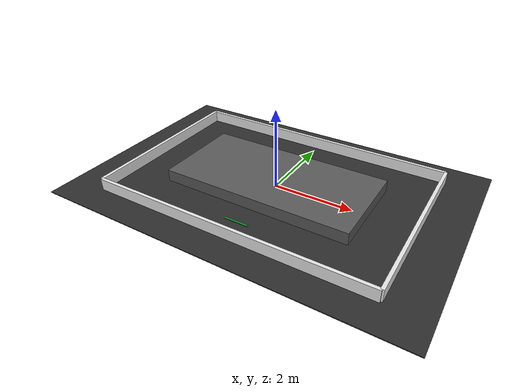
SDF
<?xml version="1.0" ?>
<sdf version="1.9">
  <world name="osracer_rect_track_nomodel">
    <plugin filename="gz-sim-physics-system" name="gz::sim::systems::Physics"/>
    <plugin filename="gz-sim-user-commands-system" name="gz::sim::systems::UserCommands"/>
    <plugin filename="gz-sim-scene-broadcaster-system" name="gz::sim::systems::SceneBroadcaster"/>
    <plugin filename="gz-sim-sensors-system" name="gz::sim::systems::Sensors">
      <render_engine>ogre2</render_engine>
    </plugin>
    <plugin filename="gz-sim-imu-system" name="gz::sim::systems::Imu"/>

    <gravity>0 0 -9.8</gravity>
    <magnetic_field>0 0 0</magnetic_field>
    <atmosphere type="adiabatic"/>

    <light name="sun" type="directional">
      <pose>0 0 8 0 0 0</pose>
      <diffuse>0.8 0.8 0.8 1</diffuse>
      <specular>0.2 0.2 0.2 1</specular>
      <direction>-0.5 0.1 -0.9</direction>
    </light>

    <model name="ground">
      <static>true</static>
      <link name="ground_link">
        <collision name="collision">
          <geometry>
            <box>
              <size>9 6 0.02</size>
            </box>
          </geometry>
        </collision>
        <visual name="visual">
          <geometry>
            <box>
              <size>9 6 0.02</size>
            </box>
          </geometry>
          <material>
            <diffuse>0.18 0.18 0.18 1</diffuse>
          </material>
        </visual>
      </link>
    </model>

    <model name="outer_walls">
      <static>true</static>
      <link name="outer_walls_link">
        <pose>0 0 0.16 0 0 0</pose>
        <collision name="south_collision">
          <pose>0 -2.25 0 0 0 0</pose>
          <geometry><box><size>7.0 0.08 0.30</size></box></geometry>
        </collision>
        <visual name="south_visual">
          <pose>0 -2.25 0 0 0 0</pose>
          <geometry><box><size>7.0 0.08 0.30</size></box></geometry>
          <material><diffuse>0.9 0.9 0.9 1</diffuse></material>
        </visual>
        <collision name="north_collision">
          <pose>0 2.25 0 0 0 0</pose>
          <geometry><box><size>7.0 0.08 0.30</size></box></geometry>
        </collision>
        <visual name="north_visual">
          <pose>0 2.25 0 0 0 0</pose>
          <geometry><box><size>7.0 0.08 0.30</size></box></geometry>
          <material><diffuse>0.9 0.9 0.9 1</diffuse></material>
        </visual>
        <collision name="west_collision">
          <pose>-3.5 0 0 0 0 0</pose>
          <geometry><box><size>0.08 4.5 0.30</size></box></geometry>
        </collision>
        <visual name="west_visual">
          <pose>-3.5 0 0 0 0 0</pose>
          <geometry><box><size>0.08 4.5 0.30</size></box></geometry>
          <material><diffuse>0.9 0.9 0.9 1</diffuse></material>
        </visual>
        <collision name="east_collision">
          <pose>3.5 0 0 0 0 0</pose>
          <geometry><box><size>0.08 4.5 0.30</size></box></geometry>
        </collision>
        <visual name="east_visual">
          <pose>3.5 0 0 0 0 0</pose>
          <geometry><box><size>0.08 4.5 0.30</size></box></geometry>
          <material><diffuse>0.9 0.9 0.9 1</diffuse></material>
        </visual>
      </link>
    </model>

    <model name="inner_island">
      <static>true</static>
      <link name="inner_island_link">
        <pose>0 0 0.16 0 0 0</pose>
        <collision name="collision">
          <geometry>
            <box>
              <size>4.8 2.3 0.30</size>
            </box>
          </geometry>
        </collision>
        <visual name="visual">
          <geometry>
            <box>
              <size>4.8 2.3 0.30</size>
            </box>
          </geometry>
          <material>
            <diffuse>0.35 0.35 0.35 1</diffuse>
          </material>
        </visual>
      </link>
    </model>

    <model name="start_marker">
      <static>true</static>
      <link name="start_marker_link">
        <pose>0 -1.7 0.03 0 0 0</pose>
        <visual name="visual">
          <geometry>
            <box>
              <size>0.6 0.04 0.02</size>
            </box>
          </geometry>
          <material>
            <diffuse>0.1 0.7 0.2 1</diffuse>
          </material>
        </visual>
      </link>
    </model>
  </world>
</sdf>
